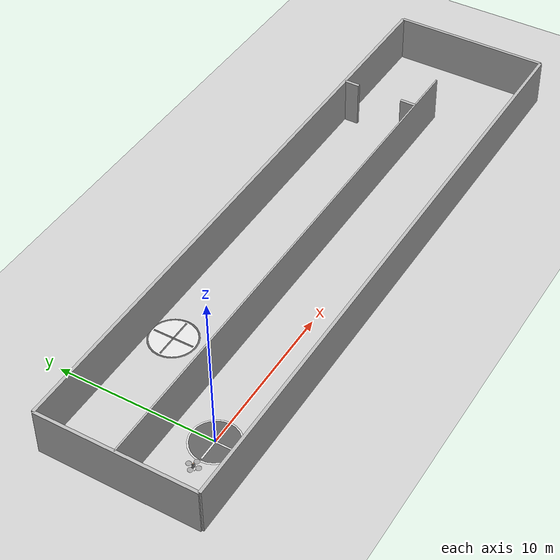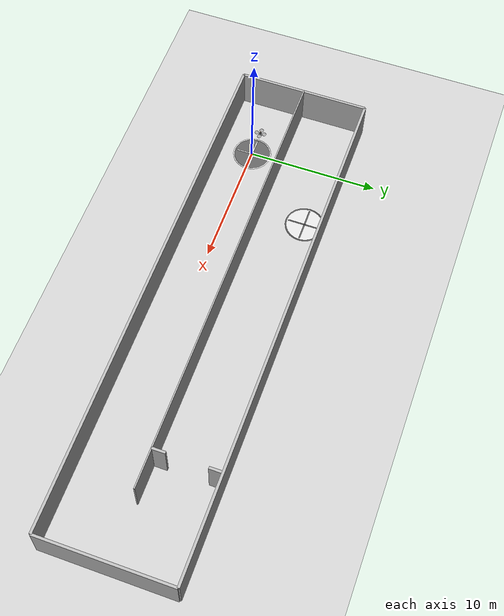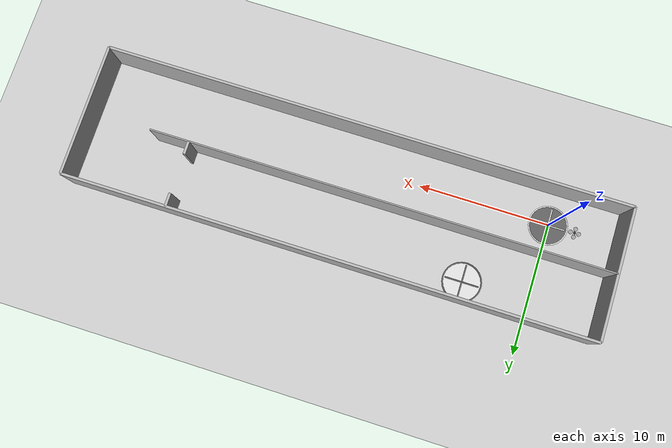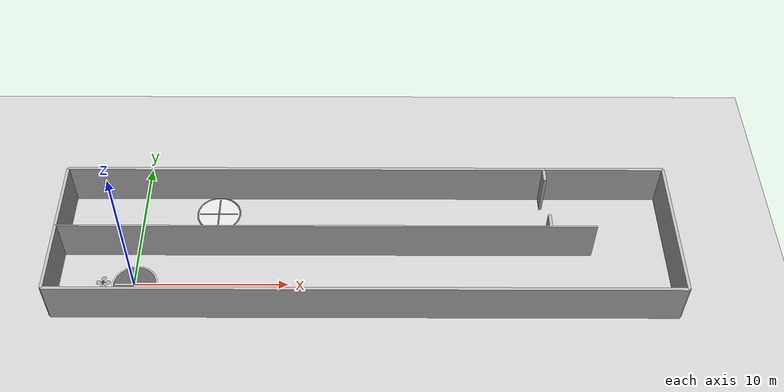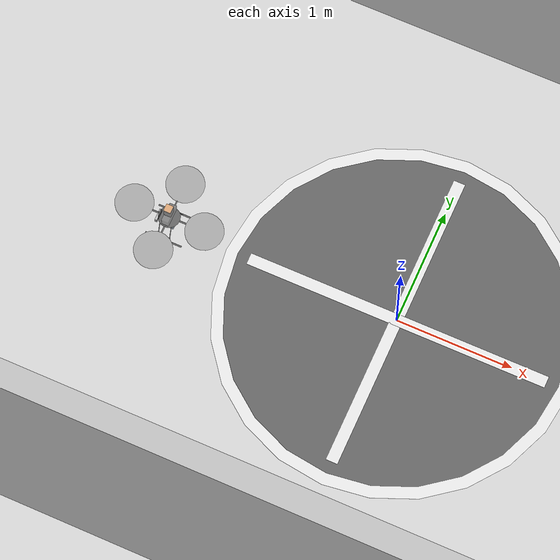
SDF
<?xml version="1.0" ?>
<sdf version="1.4">
  <world name="default">
    <!-- A global light source -->
    <include>
      <uri>model://sun</uri>
    </include>

    <!-- A ground plane -->
    <include>
      <uri>model://croc_parking_ground_plane</uri>
    </include>

    <include>
      <uri>model://croc_parking_range</uri>
    </include>

    <include>
      <uri>model://croc_flyer_v1</uri>
    </include>

	<include>
      <uri>model://takeoff_marker</uri>
    </include>

	<include>
      <uri>model://croc_parking_landing_marker</uri>
    </include>

  </world>
</sdf>

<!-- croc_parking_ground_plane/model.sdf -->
<sdf version="1.4">
  <model name="croc_parking_ground_plane">
    <static>true</static>
    <link name="link">
      <collision name="collision">
        <geometry>
          <plane>
            <normal>0 0 1</normal>
            <size>100 100</size>
          </plane>
        </geometry>
        <surface>
          <friction>
            <ode>
              <mu>100</mu>
              <mu2>50</mu2>
            </ode>
          </friction>
        </surface>
      </collision>
      <visual name="visual">
        <cast_shadows>true</cast_shadows>
        <geometry>
          <plane>
            <normal>0 0 1</normal>
            <size>100 100</size>
          </plane>
        </geometry>
        <material>
          <script>
            <uri>file://media/materials/scripts/croc.material</uri>
            <name>Croc/Floor</name>
          </script>
        </material>
      </visual>
    </link>
  </model>
</sdf>

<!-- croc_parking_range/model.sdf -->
<sdf version='1.4'>
  <model name="croc_parking_range">
	<static>true</static>
	<pose>15 -2.5 0 0 0 0</pose>
    <link name='left wall'>
      <pose>0 0 1.5 0 0 0</pose>
      <collision name='collision'>
        <geometry>
          <box>
            <size>40 .2 3</size>
          </box>
        </geometry>
      </collision>
      <visual name='visual'>
		<material>
		    <script>
        	    <uri>file://media/materials/scripts/croc.material</uri>
        	    <name>Croc/Wall</name>
        	</script>
		</material>
		<geometry>
          <box>
            <size>40 .2 3</size>
          </box>
        </geometry>
      </visual>
	</link>
 	<link name='right wall'>
      <pose>0 10 1.5 0 0 0</pose>
      <collision name='collision'>
        <geometry>
          <box>
            <size>40 .2 3</size>
          </box>
        </geometry>
      </collision>
      <visual name='visual'>
		<material>
			<script>
            	<uri>file://media/materials/scripts/croc.material</uri>
            	<name>Croc/Wall</name>
          	</script>
		</material>
        <geometry>
          <box>
            <size>40 .2 3</size>
          </box>
        </geometry>
      </visual>
	</link>
	<link name='middle wall'>
      <pose>-2.5 5 1.5 0 0 0</pose>
      <collision name='collision'>
        <geometry>
          <box>
            <size>35 0.1 3</size>
          </box>
        </geometry>
      </collision>
      <visual name='visual'>
		<material>
			<script>
		        <uri>file://media/materials/scripts/croc.material</uri>
		        <name>Croc/Wall</name>
		    </script>
		</material>
        <geometry>
          <box>
            <size>35 0.1 3</size>
          </box>
        </geometry>
      </visual>
	</link>

	<link name='rear wall'>
      <pose>20 5 1.5 0 0 0</pose>
      <collision name='collision'>
        <geometry>
          <box>
            <size>.2 10 3</size>
          </box>
        </geometry>
      </collision>
      <visual name='visual'>
		<material>
			<script>
		       <uri>file://media/materials/scripts/croc.material</uri>
		       <name>Croc/Wall</name>
		    </script>
		</material>
        <geometry>
          <box>
            <size>.2 10 3</size>
          </box>
        </geometry>
      </visual>
	</link>

	<link name='front wall'>
      <pose>-20 5 1.5 0 0 0</pose>
      <collision name='collision'>
        <geometry>
          <box>
            <size>.2 10 3</size>
          </box>
        </geometry>
      </collision>
      <visual name='visual'>
		<material>
			<script>
       		    <uri>file://media/materials/scripts/croc.material</uri>
        	    <name>Croc/Wall</name>
        	</script>
		</material>
        <geometry>
          <box>
            <size>.2 10 3</size>
          </box>
        </geometry>
      </visual>
	</link>

	<link name='obstacle wall one'>
      <pose>12 5.5 1.5 0 0 0</pose>
      <collision name='collision'>
        <geometry>
          <box>
            <size>.2 1 3</size>
          </box>
        </geometry>
      </collision>
      <visual name='visual'>
		 <material>
			 <script>
		       <uri>file://media/materials/scripts/croc.material</uri>
		       <name>Croc/Wall</name>
		     </script>
		</material>
        <geometry>
          <box>
            <size>.2 1 3</size>
          </box>
        </geometry>
      </visual>
	</link>

	<link name='obstacle wall two'>
      <pose>12 9.5 1.5 0 0 0</pose>
      <collision name='collision'>
        <geometry>
          <box>
            <size>.2 1 3</size>
          </box>
        </geometry>
      </collision>
      <visual name='visual'>
		<material>
			<script>
        	   <uri>file://media/materials/scripts/croc.material</uri>
        	   <name>Croc/Wall</name>
        	</script>
		</material>
        <geometry>
          <box>
            <size>.2 1 3</size>
          </box>
        </geometry>
      </visual>
	</link>
  </model>
</sdf>

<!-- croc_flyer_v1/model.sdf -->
<sdf version='1.4'>
	<model name="croc_flyer_v1">
		<static>false</static>
		<pose>-2 0 0 0 0 0</pose>

		<!-- MAIN ROUND PLATFORM -->
    	<link name='center'>
    		<pose>0 0 0.2 0 0 0</pose>
			<inertial>
		        <mass>0.2</mass>
		    </inertial>
			<collision name='collision'>
		    	<geometry>
		    		<cylinder>
		    			<radius>0.09</radius>
						<length>0.02</length>
		      		</cylinder>
		    	</geometry>
      		</collision>

			<visual name='visual'>
				<transparency>0.0</transparency>
				<material>
					<ambient>0 0 0 0.5</ambient>
					<diffuse>0 0 0 0.5</diffuse>
					<specular>0 0 0 0.5</specular>
					<emissive>0 0 0 0.5</emissive>
				</material>
				<geometry>
					<cylinder>
						<radius>0.09</radius>
						<length>0.02</length>
					</cylinder>
				</geometry>
			</visual>
 		</link>

	<link name='center_top'>
    		<pose>0 0 0.25 0 0 0</pose>
			<inertial>
		        <mass>0.2</mass>
		    </inertial>
			<collision name='collision'>
		    	<geometry>
		    		<box>
						<size>0.06 0.16 0.08</size>
					</box>
		    	</geometry>
      		</collision>

			<visual name='visual'>
				<material>
					<ambient>0.2 0.2 0.2 0.5</ambient>
					<diffuse>0.2 0.2 0.2 0.5</diffuse>
					<specular>0.2 0.2 0.2 0.5</specular>
					<emissive>0.2 0.2 0.2 0.5</emissive>
				</material>
				<geometry>
		    		<box>
						<size>0.06 0.16 0.08</size>
					</box>
				</geometry>
			</visual>
 		</link>

	<link name='center_bottom'>
    		<pose>0 0 0.16 0 0 0</pose>
			<inertial>
		        <mass>0.7</mass>
		    </inertial>
			<collision name='collision'>
		    	<geometry>
		    		<box>
						<size>0.12 0.12 0.06</size>
					</box>
		    	</geometry>
      		</collision>

			<visual name='visual'>
				<material>
					<ambient>0 0.1 0.2 0.5</ambient>
					<diffuse>0 0.1 0.2 0.5</diffuse>
					<specular>0 0.1 0.2 0.5</specular>
					<emissive>0 0.1 0.2 0.5</emissive>
				</material>
				<geometry>
		    		<box>
						<size>0.12 0.12 0.06</size>
					</box>
				</geometry>
			</visual>
 		</link>

		<joint name="center_top" type="revolute">
			<child>center_top</child>
			<parent>center</parent>
			<axis>
				<xyz>1 0 0</xyz>
				<limit>
					<upper>0</upper>
					<lower>0</lower>
				</limit>
			</axis>
		</joint>

		<joint name="center_bottom" type="revolute">
			<child>center_bottom</child>
			<parent>center</parent>
			<axis>
				<xyz>1 0 0</xyz>
				<limit>
					<upper>0</upper>
					<lower>0</lower>
				</limit>
			</axis>
		</joint>

		<!-- ARM N-S -->
		<link name='arm_one'>
    		<pose>0 0 0.2 0 0 0</pose>
			<inertial>
		        <mass>0.2</mass>
		    </inertial>
			<collision name='collision'>
		    	<geometry>
		    		<box>
		    			<size>0.62 0.01 0.01</size>
		      		</box>
		    	</geometry>
      		</collision>

			<visual name='visual'>
				<material>
					<ambient>0 0 0 0.5</ambient>
					<diffuse>0 0 0 0.5</diffuse>
					<specular>0 0 0 0.5</specular>
					<emissive>0 0 0 0.5</emissive>
				</material>
				<geometry>
		    		<box>
		    			<size>0.62 0.01 0.01</size>
		      		</box>
		    	</geometry>
			</visual>
 		</link>

		<!-- ARM E-W -->
		<link name='arm_two'>
    		<pose>0 0 0.2 0 0 0</pose>
			<inertial>
		        <mass>0.2</mass>
		    </inertial>
			<collision name='collision'>
		    	<geometry>
		    		<box>
		    			<size>0.01 0.62 0.01</size>
		      		</box>
		    	</geometry>
      		</collision>

			<visual name='visual'>
				<material>
					<ambient>0 0 0 0.5</ambient>
					<diffuse>0 0 0 0.5</diffuse>
					<specular>0 0 0 0.5</specular>
					<emissive>0 0 0 0.5</emissive>
				</material>
				<geometry>
		    		<box>
		    			<size>0.01 0.62 0.01</size>
		      		</box>
		    	</geometry>
			</visual>
 		</link>

		<!-- PROPELLERS -->
		<link name='north_platform'>
    		<pose>-0.31 0 0.2 0 0 0</pose>
			<inertial>
		        <mass>0.15</mass>
		    </inertial>
			<collision name='collision'>
		    	<geometry>
		    		<cylinder>
		    			<radius>0.16</radius>
						<length>0.02</length>
		      		</cylinder>
		    	</geometry>
      		</collision>

			<visual name='visual'>
				<transparency>0.9</transparency>
				<material>
					<ambient>0 0 0 0.5</ambient>
					<diffuse>0 0 0 0.5</diffuse>
					<specular>0 0 0 0.5</specular>
					<emissive>0 0 0 0.5</emissive>
				</material>

				<geometry>
					<cylinder>
						<radius>0.16</radius>
						<length>0.02</length>
					</cylinder>
				</geometry>
			</visual>
 		</link>

		<link name='south_platform'>
    		<pose>0.31 0 0.2 0 0 0</pose>
			<inertial>
		        <mass>0.15</mass>
		    </inertial>
			<collision name='collision'>
		    	<geometry>
		    		<cylinder>
		    			<radius>0.16</radius>
						<length>0.02</length>
		      		</cylinder>
		    	</geometry>
      		</collision>

			<visual name='visual'>
				<transparency>0.9</transparency>
				<material>
					<ambient>0 0 0 0.5</ambient>
					<diffuse>0 0 0 0.5</diffuse>
					<specular>0 0 0 0.5</specular>
					<emissive>0 0 0 0.5</emissive>
				</material>

				<geometry>
					<cylinder>
						<radius>0.16</radius>
						<length>0.02</length>
					</cylinder>
				</geometry>
			</visual>
 		</link>

		<link name='east_platform'>
    		<pose>0 0.31 0.2 0 0 0</pose>
			<inertial>
		        <mass>0.15</mass>
		    </inertial>
			<collision name='collision'>
		    	<geometry>
		    		<cylinder>
		    			<radius>0.16</radius>
						<length>0.02</length>
		      		</cylinder>
		    	</geometry>
      		</collision>

			<visual name='visual'>
				<transparency>0.9</transparency>
				<material>
					<ambient>0 0 0 0.5</ambient>
					<diffuse>0 0 0 0.5</diffuse>
					<specular>0 0 0 0.5</specular>
					<emissive>0 0 0 0.5</emissive>
				</material>

				<geometry>
					<cylinder>
						<radius>0.16</radius>
						<length>0.02</length>
					</cylinder>
				</geometry>
			</visual>
 		</link>

		<link name='west_platform'>
    		<pose>0 -0.31 0.2 0 0 0</pose>
			<inertial>
		        <mass>0.15</mass>
		    </inertial>
			<collision name='collision'>
		    	<geometry>
		    		<cylinder>
		    			<radius>0.16</radius>
						<length>0.02</length>
		      		</cylinder>
		    	</geometry>
      		</collision>

			<visual name='visual'>
				<transparency>0.9</transparency>
				<material>
					<ambient>0 0 0 0.5</ambient>
					<diffuse>0 0 0 0.5</diffuse>
					<specular>0 0 0 0.5</specular>
					<emissive>0 0 0 0.5</emissive>
				</material>

				<geometry>
					<cylinder>
						<radius>0.16</radius>
						<length>0.02</length>
					</cylinder>
				</geometry>
			</visual>
 		</link>

		<!-- JOINTS -->

		<joint name="north_joint" type="revolute">
			<child>north_platform</child>
			<parent>arm_one</parent>
			<axis>
				<xyz>1 0 0</xyz>
				<limit>
					<upper>0</upper>
					<lower>0</lower>
				</limit>
			</axis>
		</joint>

		<joint name="south_joint" type="revolute">
			<child>south_platform</child>
			<parent>arm_one</parent>
			<axis>
				<xyz>1 0 0</xyz>
				<limit>
					<upper>0</upper>
					<lower>0</lower>
				</limit>
			</axis>
		</joint>

		<joint name="east_joint" type="revolute">
			<child>east_platform</child>
			<parent>arm_two</parent>
			<axis>
				<xyz>0 1 0</xyz>
				<limit>
					<upper>0</upper>
					<lower>0</lower>
				</limit>
			</axis>
		</joint>

		<joint name="west_joint" type="revolute">
			<child>west_platform</child>
			<parent>arm_two</parent>
			<axis>
				<xyz>0 1 0</xyz>
				<limit>
					<upper>0</upper>
					<lower>0</lower>
				</limit>
			</axis>
		</joint>

		<joint name="arm_joint" type="revolute">
			<child>arm_one</child>
			<parent>arm_two</parent>
			<axis>
				<xyz>0 0 1</xyz>
				<limit>
					<upper>0</upper>
					<lower>0</lower>
				</limit>
			</axis>
		</joint>

		<joint name="center_joint_one" type="revolute">
			<child>arm_one</child>
			<parent>center</parent>
			<axis>
				<xyz>0 0 1</xyz>
				<limit>
					<upper>0</upper>
					<lower>0</lower>
				</limit>
			</axis>
		</joint>

		<joint name="center_joint_two" type="revolute">
			<child>arm_two</child>
			<parent>center</parent>
			<axis>
				<xyz>0 0 1</xyz>
				<limit>
					<upper>0</upper>
					<lower>0</lower>
				</limit>
			</axis>
		</joint>

	<!-- LEGS -->

		<link name='left_leg_one'>
    		<pose>0.05 -0.1 0.1 -0.3 0 0</pose>
			<inertial>
		        <mass>0.01</mass>
		    </inertial>
			<collision name='collision'>
		    	<geometry>
		    		<box>
		    			<size>0.005 0.005 0.201</size>
		      		</box>
		    	</geometry>
      		</collision>

			<visual name='visual'>
				<material>
					<ambient>0 0 0 0.5</ambient>
					<diffuse>0 0 0 0.5</diffuse>
					<specular>0 0 0 0.5</specular>
					<emissive>0 0 0 0.5</emissive>
				</material>
				<geometry>
		    		<box>
		    			<size>0.005 0.005 0.201</size>
		      		</box>
		    	</geometry>
			</visual>
 		</link>
		<link name='left_leg_two'>
    		<pose>-0.05 -0.1 0.1 -0.3 0 0</pose>
			<inertial>
		        <mass>0.01</mass>
		    </inertial>
			<collision name='collision'>
		    	<geometry>
		    		<box>
		    			<size>0.005 0.005 0.201</size>
		      		</box>
		    	</geometry>
      		</collision>

			<visual name='visual'>
				<material>
					<ambient>0 0 0 0.5</ambient>
					<diffuse>0 0 0 0.5</diffuse>
					<specular>0 0 0 0.5</specular>
					<emissive>0 0 0 0.5</emissive>
				</material>
				<geometry>
		    		<box>
		    			<size>0.005 0.005 0.201</size>
		      		</box>
		    	</geometry>
			</visual>
 		</link>
		<link name='left_row'>
    		<pose>0.0 -0.13 0.005 0 0 0</pose>
			<inertial>
		        <mass>0.01</mass>
		    </inertial>
			<collision name='collision'>
		    	<geometry>
		    		<box>
		    			<size>0.32 0.01 0.01</size>
		      		</box>
		    	</geometry>
      		</collision>

			<visual name='visual'>
				<material>
					<ambient>0 0 0 0.5</ambient>
					<diffuse>0 0 0 0.5</diffuse>
					<specular>0 0 0 0.5</specular>
					<emissive>0 0 0 0.5</emissive>
				</material>
				<geometry>
		    		<box>
		    			<size>0.32 0.01 0.01</size>
		      		</box>
		    	</geometry>
			</visual>
 		</link>

	<link name='right_leg_one'>
    		<pose>0.05 0.1 0.1 0.3 0 0</pose>
			<inertial>
		        <mass>0.01</mass>
		    </inertial>
			<collision name='collision'>
		    	<geometry>
		    		<box>
		    			<size>0.005 0.005 0.201</size>
		      		</box>
		    	</geometry>
      		</collision>

			<visual name='visual'>
				<material>
					<ambient>0 0 0 0.5</ambient>
					<diffuse>0 0 0 0.5</diffuse>
					<specular>0 0 0 0.5</specular>
					<emissive>0 0 0 0.5</emissive>
				</material>
				<geometry>
		    		<box>
		    			<size>0.005 0.005 0.201</size>
		      		</box>
		    	</geometry>
			</visual>
 		</link>
	<link name='right_leg_two'>
    		<pose>-0.05 0.1 0.1 0.3 0 0</pose>
			<inertial>
		        <mass>0.01</mass>
		    </inertial>
			<collision name='collision'>
		    	<geometry>
		    		<box>
		    			<size>0.005 0.005 0.201</size>
		      		</box>
		    	</geometry>
      		</collision>

			<visual name='visual'>
				<material>
					<ambient>0 0 0 0.5</ambient>
					<diffuse>0 0 0 0.5</diffuse>
					<specular>0 0 0 0.5</specular>
					<emissive>0 0 0 0.5</emissive>
				</material>
				<geometry>
		    		<box>
		    			<size>0.005 0.005 0.201</size>
		      		</box>
		    	</geometry>
			</visual>
 		</link>

	<link name='right_row'>
    		<pose>0.0 0.13 0.005 0 0 0</pose>
			<inertial>
		        <mass>0.01</mass>
		    </inertial>
			<collision name='collision'>
		    	<geometry>
		    		<box>
		    			<size>0.32 0.01 0.01</size>
		      		</box>
		    	</geometry>
      		</collision>

			<visual name='visual'>
				<material>
					<ambient>0 0 0 0.5</ambient>
					<diffuse>0 0 0 0.5</diffuse>
					<specular>0 0 0 0.5</specular>
					<emissive>0 0 0 0.5</emissive>
				</material>
				<geometry>
		    		<box>
		    			<size>0.32 0.01 0.01</size>
		      		</box>
		    	</geometry>
			</visual>
 		</link>

	<joint name="left_leg_center_one" type="revolute">
			<child>left_leg_one</child>
			<parent>center</parent>
			<axis>
				<xyz>0 0 1</xyz>
				<limit>
					<upper>0</upper>
					<lower>0</lower>
				</limit>
			</axis>
		</joint>

	<joint name="left_leg_center_two" type="revolute">
			<child>left_leg_two</child>
			<parent>center</parent>
			<axis>
				<xyz>0 0 1</xyz>
				<limit>
					<upper>0</upper>
					<lower>0</lower>
				</limit>
			</axis>
		</joint>

	<joint name="left_leg_row_one" type="revolute">
			<child>left_row</child>
			<parent>left_leg_one</parent>
			<axis>
				<xyz>0 0 1</xyz>
				<limit>
					<upper>0</upper>
					<lower>0</lower>
				</limit>
			</axis>
		</joint>

	<joint name="left_leg_row_two" type="revolute">
			<child>left_row</child>
			<parent>left_leg_two</parent>
			<axis>
				<xyz>0 0 1</xyz>
				<limit>
					<upper>0</upper>
					<lower>0</lower>
				</limit>
			</axis>
		</joint>

	<joint name="right_leg_center_one" type="revolute">
			<child>right_leg_one</child>
			<parent>center</parent>
			<axis>
				<xyz>0 0 1</xyz>
				<limit>
					<upper>0</upper>
					<lower>0</lower>
				</limit>
			</axis>
		</joint>

	<joint name="right_leg_center_two" type="revolute">
			<child>right_leg_two</child>
			<parent>center</parent>
			<axis>
				<xyz>0 0 1</xyz>
				<limit>
					<upper>0</upper>
					<lower>0</lower>
				</limit>
			</axis>
		</joint>

<joint name="right_leg_row_one" type="revolute">
			<child>right_row</child>
			<parent>right_leg_one</parent>
			<axis>
				<xyz>0 0 1</xyz>
				<limit>
					<upper>0</upper>
					<lower>0</lower>
				</limit>
			</axis>
		</joint>

	<joint name="right_leg_row_two" type="revolute">
			<child>right_row</child>
			<parent>right_leg_two</parent>
			<axis>
				<xyz>0 0 1</xyz>
				<limit>
					<upper>0</upper>
					<lower>0</lower>
				</limit>
			</axis>
		</joint>

	<!-- HOKUYO -->
    <link name='lidar'>
		<pose>0 0 0.34 0 0 1.57</pose>
	  <inertial>
        <mass>0.25</mass>
      </inertial>
		<collision name='collision'>
	    	<geometry>
				<box>
	    			<size>0.06 0.06 0.1</size>
	      		</box>
	    	</geometry>
  		</collision>

		<visual name='visual'>
				<pose>0 0 -0.01 0 0 1.57</pose>
				<material>
					<ambient>0 0 0 0.5</ambient>
					<diffuse>0 0 0 0.5</diffuse>
					<specular>0 0 0 0.5</specular>
					<emissive>0 0 0 0.5</emissive>
				</material>
			<geometry>
				<box>
	    			<size>0.06 0.06 0.08</size>
	      		</box>
	    	</geometry>
		</visual>

		<visual name='visual_red'>
			<pose>0 0 0.04 0 0 1.57</pose>
				<material>
					<ambient>0.9 0.5 0.15 0.5</ambient>
					<diffuse>0.9 0.5 0.15 0.5</diffuse>
					<specular>0.9 0.5 0.15 0.5</specular>
					<emissive>0.9 0.5 0.15 0.5</emissive>
				</material>
			<geometry>
				<box>
	    			<size>0.06 0.06 0.02</size>
	      		</box>
	    	</geometry>
		</visual>

		<sensor name="laser" type="ray">
			<pose>0 0 0.12 0 0 0</pose>
			<ray>
			  <scan>
				<horizontal>
				  <samples>1040</samples>
				  <resolution>1</resolution>
				  <min_angle>-2.26889</min_angle>
				  <max_angle>2.268899</max_angle>
				</horizontal>
			  </scan>
			  <range>
				<min>0.08</min>
				<max>20</max>
				<resolution>1</resolution>
			  </range>
			</ray>
			<always_on>1</always_on>
			<update_rate>40</update_rate>
			<visualize>true</visualize>
		</sensor>
	</link>

	<joint name="lidar_joint" type="revolute">
	  <child>lidar</child>
	  <parent>center_top</parent>
	  <axis>
		<xyz>0 0 1</xyz>
		<limit>
		  <upper>0</upper>
		  <lower>0</lower>
		</limit>
	  </axis>
	</joint>

<!-- CAMERA -->
	<link name='camera_row'>
	  <pose>-0.1 0 0.13 0 0 3.1415</pose>
      <inertial>
		<mass>0.05</mass>
      </inertial>
      <collision name='collision'>
        <geometry>
          <box>
	    	 <size>0.02 0.1 0.04</size>
	      </box>
        </geometry>
      </collision>
	  <visual name='visual'>
        <geometry>
		  <box>
	    	 <size>0.02 0.1 0.04</size>
	      </box>
		</geometry>
      </visual>
     <sensor name="camera_sensor" type="camera">
		<always_on>true</always_on>
		<pose>0.1 0 0 0 0 0</pose>
        <topic>/mike/robot_camera</topic>
		<camera name="mike_camera">
			<horizontal_fov>2.09</horizontal_fov>
            <image>
				<width>640</width>
				<height>480</height>
				<format>R8G8B8</format>
			</image>
			<clip>
				<near>0.01</near>
				<far>40</far>
			</clip>
		</camera>
  		<plugin name="ros_based_plugin" filename="libros_camera_plugin.so"/>
      </sensor>
    </link>

	<joint name="camera_joint" type="revolute">
	  <child>camera_row</child>
	  <parent>center</parent>
	  <axis>
		<xyz>0 0 1</xyz>
		<limit>
		  <upper>0</upper>
		  <lower>0</lower>
		</limit>
	  </axis>
	</joint>

   <plugin name="ros_flyer_plugin" filename="libros_flyer_plugin.so"/>
   <plugin name="ros_px4flow_plugin" filename="libros_px4flow_plugin.so"/>
   <plugin name="ros_lidar_plugin" filename="libros_lidar_plugin.so"/>

  </model>

</sdf>

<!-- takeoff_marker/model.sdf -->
<sdf version='1.4'>
  <model name="takeoff_marker">
	<static>true</static>
	<pose>0 0 0 0 0 0</pose>
    <link name='marker'>
	  <pose>0 0 0 0 0 0</pose>
      <collision name='collision'>
        <geometry>
          <cylinder>
            <radius>1.5</radius>
			<length>0</length>
          </cylinder>
        </geometry>
      </collision>

      <visual name='visual_white_circle'>
		<material>
			<ambient>1 1 1 0.5</ambient>
			<diffuse>1 1 1 0.5</diffuse>
			<specular>1 1 1 0.5</specular>
			<emissive>1 1 1 0.5</emissive>
		</material>
	    <geometry>
	      <cylinder>
            <radius>1.5</radius>
			<length>0.005</length>
          </cylinder>
        </geometry>
      </visual>

      <visual name='visual_black_circle'>
		<material>
			<ambient>0 0 0 0.5</ambient>
			<diffuse>0 0 0 0.5</diffuse>
			<specular>0 0 0 0.5</specular>
			<emissive>0 0 0 0.5</emissive>
		</material>
	    <geometry>
	      <cylinder>
            <radius>1.4</radius>
			<length>0.01</length>
          </cylinder>
        </geometry>
      </visual>

	  <visual name='visual_bar_1'>
		<material>
			<ambient>1 1 1 0.5</ambient>
			<diffuse>1 1 1 0.5</diffuse>
			<specular>1 1 1 0.5</specular>
			<emissive>1 1 1 0.5</emissive>
		</material>
	    <geometry>
	      <box>
			<size>0.1 2.6 0.015</size>
		  </box>
        </geometry>
      </visual>

	  <visual name='visual_bar_2'>
		<material>
			<ambient>1 1 1 0.5</ambient>
			<diffuse>1 1 1 0.5</diffuse>
			<specular>1 1 1 0.5</specular>
			<emissive>1 1 1 0.5</emissive>
		</material>
	    <geometry>
	      <box>
			<size>2.6 0.1 0.015</size>
		  </box>
        </geometry>
      </visual>

	</link>
  </model>
</sdf>

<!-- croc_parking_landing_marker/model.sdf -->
<sdf version='1.3'>
  <model name="croc_parking_landing_marker">
	<static>true</static>
	<pose>5 6 0 0 0 0</pose>
    <link name='marker'>
	  <pose>0 0 0 0 0 0</pose>
      <collision name='collision'>
        <geometry>
          <cylinder>
            <radius>1.5</radius>
			<length>0</length>
          </cylinder>
        </geometry>
      </collision>

      <visual name='visual_black_circle'>
		<material>
			<ambient>0 0 0 0.5</ambient>
			<diffuse>0 0 0 0.5</diffuse>
			<specular>0 0 0 0.5</specular>
			<emissive>0 0 0 0.5</emissive>
		</material>
	    <geometry>
	      <cylinder>
            <radius>1.5</radius>
			<length>0.005</length>
          </cylinder>
        </geometry>
      </visual>

      <visual name='visual_white_circle'>
		<material>
			<ambient>1 1 1 0.5</ambient>
			<diffuse>1 1 1 0.5</diffuse>
			<specular>1 1 1 0.5</specular>
			<emissive>1 1 1 0.5</emissive>
		</material>
	    <geometry>
	      <cylinder>
            <radius>1.4</radius>
			<length>0.01</length>
          </cylinder>
        </geometry>
      </visual>

	  <visual name='visual_bar_1'>
		<material>
			<ambient>0 0 0 0.5</ambient>
			<diffuse>0 0 0 0.5</diffuse>
			<specular>0 0 0 0.5</specular>
			<emissive>0 0 0 0.5</emissive>
		</material>
	    <geometry>
	      <box>
			<size>0.1 2.6 0.015</size>
		  </box>
        </geometry>
      </visual>

	  <visual name='visual_bar_2'>
		<material>
			<ambient>0 0 0 0.5</ambient>
			<diffuse>0 0 0 0.5</diffuse>
			<specular>0 0 0 0.5</specular>
			<emissive>0 0 0 0.5</emissive>
		</material>
	    <geometry>
	      <box>
			<size>2.6 0.1 0.015</size>
		  </box>
        </geometry>
      </visual>

	</link>

  </model>
</sdf>
